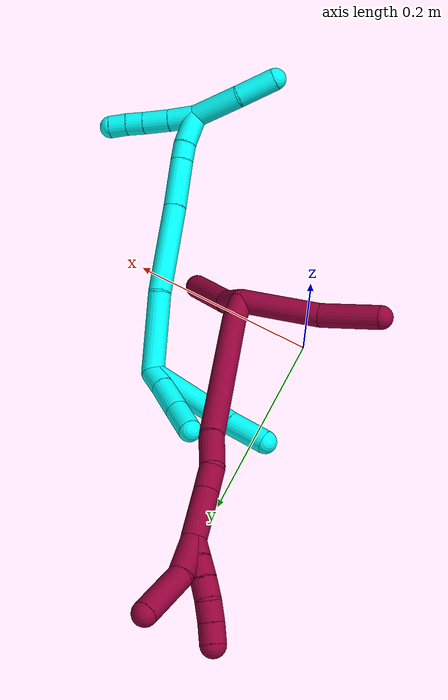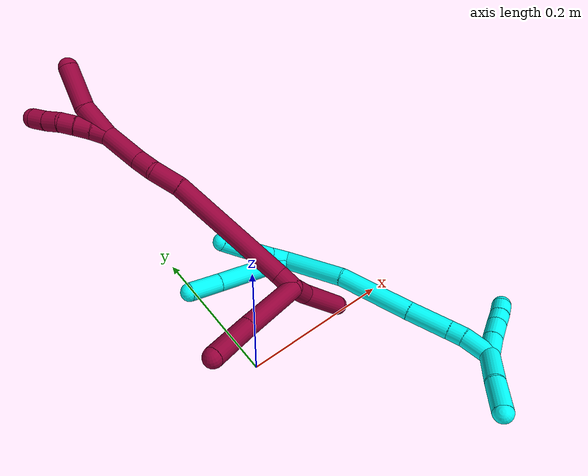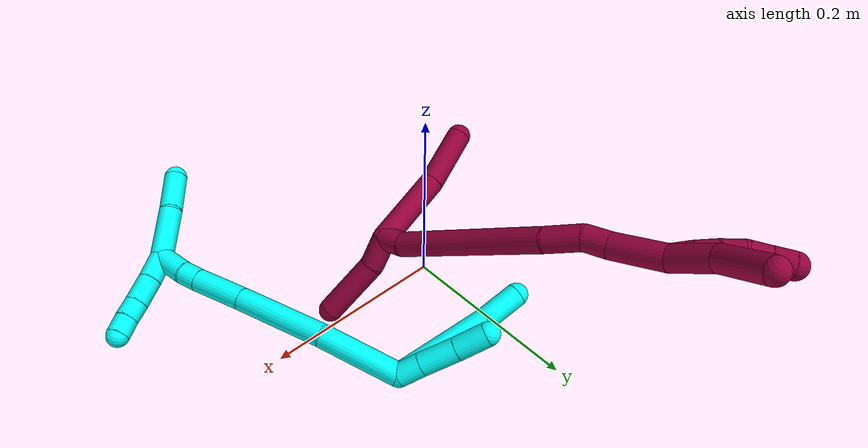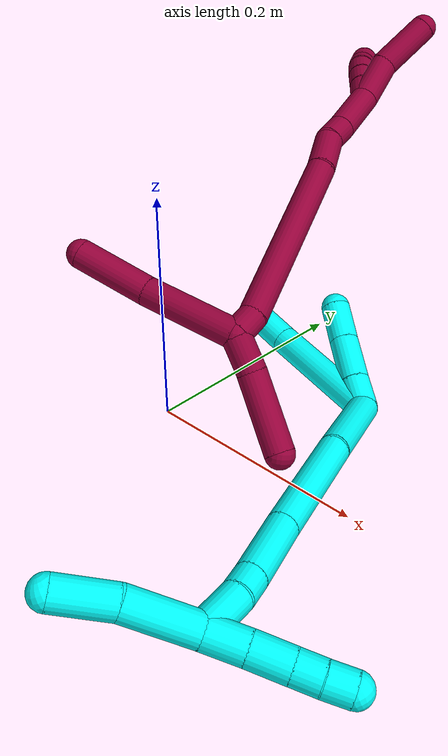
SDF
<sdf version="1.7">
 <world name="default">
  <model name="3">
   <static>0</static>
   <link name="3">
    <collision name="collision-cylinder-e_1_2_8">
     <pose>-0.042632 -0.005134 0.03058 0.166331 -0.94196 -0.08484</pose>
     <geometry><cylinder><radius>0.0125</radius><length>0.105431</length></cylinder></geometry>
     <surface>
      <friction><ode><mu>1.16</mu><mu2>1.16</mu2><slip1>0</slip1><slip2>0</slip2></ode></friction>
      <contact><ode><kp>1e+06</kp><kd>1</kd><max_vel>0</max_vel><min_depth>0.001</min_depth></ode></contact>
     </surface>
    </collision>
    <visual name="visual-cylinder-e_1_2_8">
     <pose>-0.042632 -0.005134 0.03058 0.166331 -0.94196 -0.08484</pose>
     <geometry><cylinder><radius>0.0125</radius><length>0.105431</length></cylinder></geometry>
     <material><ambient>0.003922 1 0.996078 1</ambient></material>
    </visual>
    <collision name="collision-cylinder-e_2_8_6">
     <pose>-0.10186 -0.013024 0.075773 0.186445 -0.840143 -0.083471</pose>
     <geometry><cylinder><radius>0.0125</radius><length>0.044569</length></cylinder></geometry>
     <surface>
      <friction><ode><mu>1.16</mu><mu2>1.16</mu2><slip1>0</slip1><slip2>0</slip2></ode></friction>
      <contact><ode><kp>1e+06</kp><kd>1</kd><max_vel>0</max_vel><min_depth>0.001</min_depth></ode></contact>
     </surface>
    </collision>
    <visual name="visual-cylinder-e_2_8_6">
     <pose>-0.10186 -0.013024 0.075773 0.186445 -0.840143 -0.083471</pose>
     <geometry><cylinder><radius>0.0125</radius><length>0.044569</length></cylinder></geometry>
     <material><ambient>0.003922 1 0.996078 1</ambient></material>
    </visual>
    <collision name="collision-cylinder-e_1_2_9">
     <pose>-0.007828 0.004427 0.009527 -0.43498 -0.640388 0.146298</pose>
     <geometry><cylinder><radius>0.0125</radius><length>0.026202</length></cylinder></geometry>
     <surface>
      <friction><ode><mu>1.16</mu><mu2>1.16</mu2><slip1>0</slip1><slip2>0</slip2></ode></friction>
      <contact><ode><kp>1e+06</kp><kd>1</kd><max_vel>0</max_vel><min_depth>0.001</min_depth></ode></contact>
     </surface>
    </collision>
    <visual name="visual-cylinder-e_1_2_9">
     <pose>-0.007828 0.004427 0.009527 -0.43498 -0.640388 0.146298</pose>
     <geometry><cylinder><radius>0.0125</radius><length>0.026202</length></cylinder></geometry>
     <material><ambient>0.003922 1 0.996078 1</ambient></material>
    </visual>
    <collision name="collision-cylinder-e_2_9_10">
     <pose>-0.027481 0.01618 0.033003 -0.483632 -0.643837 0.164151</pose>
     <geometry><cylinder><radius>0.0125</radius><length>0.039401</length></cylinder></geometry>
     <surface>
      <friction><ode><mu>1.16</mu><mu2>1.16</mu2><slip1>0</slip1><slip2>0</slip2></ode></friction>
      <contact><ode><kp>1e+06</kp><kd>1</kd><max_vel>0</max_vel><min_depth>0.001</min_depth></ode></contact>
     </surface>
    </collision>
    <visual name="visual-cylinder-e_2_9_10">
     <pose>-0.027481 0.01618 0.033003 -0.483632 -0.643837 0.164151</pose>
     <geometry><cylinder><radius>0.0125</radius><length>0.039401</length></cylinder></geometry>
     <material><ambient>0.003922 1 0.996078 1</ambient></material>
    </visual>
    <collision name="collision-cylinder-e_3_10_5">
     <pose>-0.048889 0.029936 0.059706 -0.466911 -0.590962 0.144511</pose>
     <geometry><cylinder><radius>0.0125</radius><length>0.034397</length></cylinder></geometry>
     <surface>
      <friction><ode><mu>1.16</mu><mu2>1.16</mu2><slip1>0</slip1><slip2>0</slip2></ode></friction>
      <contact><ode><kp>1e+06</kp><kd>1</kd><max_vel>0</max_vel><min_depth>0.001</min_depth></ode></contact>
     </surface>
    </collision>
    <visual name="visual-cylinder-e_3_10_5">
     <pose>-0.048889 0.029936 0.059706 -0.466911 -0.590962 0.144511</pose>
     <geometry><cylinder><radius>0.0125</radius><length>0.034397</length></cylinder></geometry>
     <material><ambient>0.003922 1 0.996078 1</ambient></material>
    </visual>
    <collision name="collision-cylinder-e_1_2_11">
     <pose>0.031209 -0.030587 0.002971 1.47395 0.793122 0.726358</pose>
     <geometry><cylinder><radius>0.0125</radius><length>0.087599</length></cylinder></geometry>
     <surface>
      <friction><ode><mu>1.16</mu><mu2>1.16</mu2><slip1>0</slip1><slip2>0</slip2></ode></friction>
      <contact><ode><kp>1e+06</kp><kd>1</kd><max_vel>0</max_vel><min_depth>0.001</min_depth></ode></contact>
     </surface>
    </collision>
    <visual name="visual-cylinder-e_1_2_11">
     <pose>0.031209 -0.030587 0.002971 1.47395 0.793122 0.726358</pose>
     <geometry><cylinder><radius>0.0125</radius><length>0.087599</length></cylinder></geometry>
     <material><ambient>0.003922 1 0.996078 1</ambient></material>
    </visual>
    <collision name="collision-cylinder-e_2_11_12">
     <pose>0.092569 -0.100926 0.002838 1.64874 0.647427 0.695963</pose>
     <geometry><cylinder><radius>0.0125</radius><length>0.09998</length></cylinder></geometry>
     <surface>
      <friction><ode><mu>1.16</mu><mu2>1.16</mu2><slip1>0</slip1><slip2>0</slip2></ode></friction>
      <contact><ode><kp>1e+06</kp><kd>1</kd><max_vel>0</max_vel><min_depth>0.001</min_depth></ode></contact>
     </surface>
    </collision>
    <visual name="visual-cylinder-e_2_11_12">
     <pose>0.092569 -0.100926 0.002838 1.64874 0.647427 0.695963</pose>
     <geometry><cylinder><radius>0.0125</radius><length>0.09998</length></cylinder></geometry>
     <material><ambient>0.003922 1 0.996078 1</ambient></material>
    </visual>
    <collision name="collision-cylinder-e_3_12_13">
     <pose>0.139983 -0.162294 -0.002131 1.65681 0.672119 0.72756</pose>
     <geometry><cylinder><radius>0.0125</radius><length>0.05545</length></cylinder></geometry>
     <surface>
      <friction><ode><mu>1.16</mu><mu2>1.16</mu2><slip1>0</slip1><slip2>0</slip2></ode></friction>
      <contact><ode><kp>1e+06</kp><kd>1</kd><max_vel>0</max_vel><min_depth>0.001</min_depth></ode></contact>
     </surface>
    </collision>
    <visual name="visual-cylinder-e_3_12_13">
     <pose>0.139983 -0.162294 -0.002131 1.65681 0.672119 0.72756</pose>
     <geometry><cylinder><radius>0.0125</radius><length>0.05545</length></cylinder></geometry>
     <material><ambient>0.003922 1 0.996078 1</ambient></material>
    </visual>
    <collision name="collision-cylinder-e_4_13_14">
     <pose>0.16353 -0.191933 -0.004206 1.59713 0.664252 0.680655</pose>
     <geometry><cylinder><radius>0.0125</radius><length>0.020389</length></cylinder></geometry>
     <surface>
      <friction><ode><mu>1.16</mu><mu2>1.16</mu2><slip1>0</slip1><slip2>0</slip2></ode></friction>
      <contact><ode><kp>1e+06</kp><kd>1</kd><max_vel>0</max_vel><min_depth>0.001</min_depth></ode></contact>
     </surface>
    </collision>
    <visual name="visual-cylinder-e_4_13_14">
     <pose>0.16353 -0.191933 -0.004206 1.59713 0.664252 0.680655</pose>
     <geometry><cylinder><radius>0.0125</radius><length>0.020389</length></cylinder></geometry>
     <material><ambient>0.003922 1 0.996078 1</ambient></material>
    </visual>
    <collision name="collision-cylinder-e_5_14_1">
     <pose>0.178394 -0.216108 -0.004127 1.55282 0.48822 0.479856</pose>
     <geometry><cylinder><radius>0.0125</radius><length>0.036582</length></cylinder></geometry>
     <surface>
      <friction><ode><mu>1.16</mu><mu2>1.16</mu2><slip1>0</slip1><slip2>0</slip2></ode></friction>
      <contact><ode><kp>1e+06</kp><kd>1</kd><max_vel>0</max_vel><min_depth>0.001</min_depth></ode></contact>
     </surface>
    </collision>
    <visual name="visual-cylinder-e_5_14_1">
     <pose>0.178394 -0.216108 -0.004127 1.55282 0.48822 0.479856</pose>
     <geometry><cylinder><radius>0.0125</radius><length>0.036582</length></cylinder></geometry>
     <material><ambient>0.003922 1 0.996078 1</ambient></material>
    </visual>
    <collision name="collision-cylinder-e_1_1_15">
     <pose>0.193631 -0.222771 -0.01361 -2.37094 0.454547 -1.03643</pose>
     <geometry><cylinder><radius>0.0125</radius><length>0.030324</length></cylinder></geometry>
     <surface>
      <friction><ode><mu>1.16</mu><mu2>1.16</mu2><slip1>0</slip1><slip2>0</slip2></ode></friction>
      <contact><ode><kp>1e+06</kp><kd>1</kd><max_vel>0</max_vel><min_depth>0.001</min_depth></ode></contact>
     </surface>
    </collision>
    <visual name="visual-cylinder-e_1_1_15">
     <pose>0.193631 -0.222771 -0.01361 -2.37094 0.454547 -1.03643</pose>
     <geometry><cylinder><radius>0.0125</radius><length>0.030324</length></cylinder></geometry>
     <material><ambient>0.003922 1 0.996078 1</ambient></material>
    </visual>
    <collision name="collision-cylinder-e_2_15_16">
     <pose>0.207301 -0.204415 -0.032896 -2.39135 0.494587 -1.14024</pose>
     <geometry><cylinder><radius>0.0125</radius><length>0.029549</length></cylinder></geometry>
     <surface>
      <friction><ode><mu>1.16</mu><mu2>1.16</mu2><slip1>0</slip1><slip2>0</slip2></ode></friction>
      <contact><ode><kp>1e+06</kp><kd>1</kd><max_vel>0</max_vel><min_depth>0.001</min_depth></ode></contact>
     </surface>
    </collision>
    <visual name="visual-cylinder-e_2_15_16">
     <pose>0.207301 -0.204415 -0.032896 -2.39135 0.494587 -1.14024</pose>
     <geometry><cylinder><radius>0.0125</radius><length>0.029549</length></cylinder></geometry>
     <material><ambient>0.003922 1 0.996078 1</ambient></material>
    </visual>
    <collision name="collision-cylinder-e_3_16_17">
     <pose>0.219387 -0.189599 -0.048661 -2.38099 0.531422 -1.19541</pose>
     <geometry><cylinder><radius>0.0125</radius><length>0.020024</length></cylinder></geometry>
     <surface>
      <friction><ode><mu>1.16</mu><mu2>1.16</mu2><slip1>0</slip1><slip2>0</slip2></ode></friction>
      <contact><ode><kp>1e+06</kp><kd>1</kd><max_vel>0</max_vel><min_depth>0.001</min_depth></ode></contact>
     </surface>
    </collision>
    <visual name="visual-cylinder-e_3_16_17">
     <pose>0.219387 -0.189599 -0.048661 -2.38099 0.531422 -1.19541</pose>
     <geometry><cylinder><radius>0.0125</radius><length>0.020024</length></cylinder></geometry>
     <material><ambient>0.003922 1 0.996078 1</ambient></material>
    </visual>
    <collision name="collision-cylinder-e_4_17_4">
     <pose>0.22891 -0.177231 -0.061243 -2.34927 0.458568 -1.01789</pose>
     <geometry><cylinder><radius>0.0125</radius><length>0.020103</length></cylinder></geometry>
     <surface>
      <friction><ode><mu>1.16</mu><mu2>1.16</mu2><slip1>0</slip1><slip2>0</slip2></ode></friction>
      <contact><ode><kp>1e+06</kp><kd>1</kd><max_vel>0</max_vel><min_depth>0.001</min_depth></ode></contact>
     </surface>
    </collision>
    <visual name="visual-cylinder-e_4_17_4">
     <pose>0.22891 -0.177231 -0.061243 -2.34927 0.458568 -1.01789</pose>
     <geometry><cylinder><radius>0.0125</radius><length>0.020103</length></cylinder></geometry>
     <material><ambient>0.003922 1 0.996078 1</ambient></material>
    </visual>
    <collision name="collision-cylinder-e_1_1_18">
     <pose>0.18191 -0.250699 0.016281 0.741907 -0.18348 -0.071537</pose>
     <geometry><cylinder><radius>0.0125</radius><length>0.05551</length></cylinder></geometry>
     <surface>
      <friction><ode><mu>1.16</mu><mu2>1.16</mu2><slip1>0</slip1><slip2>0</slip2></ode></friction>
      <contact><ode><kp>1e+06</kp><kd>1</kd><max_vel>0</max_vel><min_depth>0.001</min_depth></ode></contact>
     </surface>
    </collision>
    <visual name="visual-cylinder-e_1_1_18">
     <pose>0.18191 -0.250699 0.016281 0.741907 -0.18348 -0.071537</pose>
     <geometry><cylinder><radius>0.0125</radius><length>0.05551</length></cylinder></geometry>
     <material><ambient>0.003922 1 0.996078 1</ambient></material>
    </visual>
    <collision name="collision-cylinder-e_2_18_3">
     <pose>0.172679 -0.286696 0.049405 0.93319 -0.188419 -0.095115</pose>
     <geometry><cylinder><radius>0.0125</radius><length>0.04449</length></cylinder></geometry>
     <surface>
      <friction><ode><mu>1.16</mu><mu2>1.16</mu2><slip1>0</slip1><slip2>0</slip2></ode></friction>
      <contact><ode><kp>1e+06</kp><kd>1</kd><max_vel>0</max_vel><min_depth>0.001</min_depth></ode></contact>
     </surface>
    </collision>
    <visual name="visual-cylinder-e_2_18_3">
     <pose>0.172679 -0.286696 0.049405 0.93319 -0.188419 -0.095115</pose>
     <geometry><cylinder><radius>0.0125</radius><length>0.04449</length></cylinder></geometry>
     <material><ambient>0.003922 1 0.996078 1</ambient></material>
    </visual>
    <collision name="collision-sphere-3">
     <pose>0.168513 -0.304254 0.062413 0 -0 0</pose>
     <geometry><sphere><radius>0.0125</radius></sphere></geometry>
     <surface>
      <friction><ode><mu>1.16</mu><mu2>1.16</mu2><slip1>0</slip1><slip2>0</slip2></ode></friction>
      <contact><ode><kp>1e+06</kp><kd>1</kd><max_vel>0</max_vel><min_depth>0.001</min_depth></ode></contact>
     </surface>
    </collision>
    <visual name="visual-sphere-3">
     <pose>0.168513 -0.304254 0.062413 0 -0 0</pose>
     <geometry><sphere><radius>0.0125</radius></sphere></geometry>
     <material><ambient>0.003922 1 0.996078 1</ambient></material>
    </visual>
    <collision name="collision-sphere-5">
     <pose>-0.058472 0.036364 0.072459 0 -0 0</pose>
     <geometry><sphere><radius>0.0125</radius></sphere></geometry>
     <surface>
      <friction><ode><mu>1.16</mu><mu2>1.16</mu2><slip1>0</slip1><slip2>0</slip2></ode></friction>
      <contact><ode><kp>1e+06</kp><kd>1</kd><max_vel>0</max_vel><min_depth>0.001</min_depth></ode></contact>
     </surface>
    </collision>
    <visual name="visual-sphere-5">
     <pose>-0.058472 0.036364 0.072459 0 -0 0</pose>
     <geometry><sphere><radius>0.0125</radius></sphere></geometry>
     <material><ambient>0.003922 1 0.996078 1</ambient></material>
    </visual>
    <collision name="collision-sphere-10">
     <pose>-0.039307 0.023507 0.046953 0 -0 0</pose>
     <geometry><sphere><radius>0.0125</radius></sphere></geometry>
     <surface>
      <friction><ode><mu>1.16</mu><mu2>1.16</mu2><slip1>0</slip1><slip2>0</slip2></ode></friction>
      <contact><ode><kp>1e+06</kp><kd>1</kd><max_vel>0</max_vel><min_depth>0.001</min_depth></ode></contact>
     </surface>
    </collision>
    <visual name="visual-sphere-10">
     <pose>-0.039307 0.023507 0.046953 0 -0 0</pose>
     <geometry><sphere><radius>0.0125</radius></sphere></geometry>
     <material><ambient>0.003922 1 0.996078 1</ambient></material>
    </visual>
    <collision name="collision-sphere-6">
     <pose>-0.118456 -0.015781 0.090387 0 -0 0</pose>
     <geometry><sphere><radius>0.0125</radius></sphere></geometry>
     <surface>
      <friction><ode><mu>1.16</mu><mu2>1.16</mu2><slip1>0</slip1><slip2>0</slip2></ode></friction>
      <contact><ode><kp>1e+06</kp><kd>1</kd><max_vel>0</max_vel><min_depth>0.001</min_depth></ode></contact>
     </surface>
    </collision>
    <visual name="visual-sphere-6">
     <pose>-0.118456 -0.015781 0.090387 0 -0 0</pose>
     <geometry><sphere><radius>0.0125</radius></sphere></geometry>
     <material><ambient>0.003922 1 0.996078 1</ambient></material>
    </visual>
    <collision name="collision-sphere-9">
     <pose>-0.015656 0.008854 0.019054 0 -0 0</pose>
     <geometry><sphere><radius>0.0125</radius></sphere></geometry>
     <surface>
      <friction><ode><mu>1.16</mu><mu2>1.16</mu2><slip1>0</slip1><slip2>0</slip2></ode></friction>
      <contact><ode><kp>1e+06</kp><kd>1</kd><max_vel>0</max_vel><min_depth>0.001</min_depth></ode></contact>
     </surface>
    </collision>
    <visual name="visual-sphere-9">
     <pose>-0.015656 0.008854 0.019054 0 -0 0</pose>
     <geometry><sphere><radius>0.0125</radius></sphere></geometry>
     <material><ambient>0.003922 1 0.996078 1</ambient></material>
    </visual>
    <collision name="collision-sphere-2">
     <geometry><sphere><radius>0.0125</radius></sphere></geometry>
     <surface>
      <friction><ode><mu>1.16</mu><mu2>1.16</mu2><slip1>0</slip1><slip2>0</slip2></ode></friction>
      <contact><ode><kp>1e+06</kp><kd>1</kd><max_vel>0</max_vel><min_depth>0.001</min_depth></ode></contact>
     </surface>
    </collision>
    <visual name="visual-sphere-2">
     <geometry><sphere><radius>0.0125</radius></sphere></geometry>
     <material><ambient>0.003922 1 0.996078 1</ambient></material>
    </visual>
    <collision name="collision-sphere-8">
     <pose>-0.085264 -0.010268 0.061159 0 -0 0</pose>
     <geometry><sphere><radius>0.0125</radius></sphere></geometry>
     <surface>
      <friction><ode><mu>1.16</mu><mu2>1.16</mu2><slip1>0</slip1><slip2>0</slip2></ode></friction>
      <contact><ode><kp>1e+06</kp><kd>1</kd><max_vel>0</max_vel><min_depth>0.001</min_depth></ode></contact>
     </surface>
    </collision>
    <visual name="visual-sphere-8">
     <pose>-0.085264 -0.010268 0.061159 0 -0 0</pose>
     <geometry><sphere><radius>0.0125</radius></sphere></geometry>
     <material><ambient>0.003922 1 0.996078 1</ambient></material>
    </visual>
    <collision name="collision-sphere-11">
     <pose>0.062418 -0.061173 0.005943 0 -0 0</pose>
     <geometry><sphere><radius>0.0125</radius></sphere></geometry>
     <surface>
      <friction><ode><mu>1.16</mu><mu2>1.16</mu2><slip1>0</slip1><slip2>0</slip2></ode></friction>
      <contact><ode><kp>1e+06</kp><kd>1</kd><max_vel>0</max_vel><min_depth>0.001</min_depth></ode></contact>
     </surface>
    </collision>
    <visual name="visual-sphere-11">
     <pose>0.062418 -0.061173 0.005943 0 -0 0</pose>
     <geometry><sphere><radius>0.0125</radius></sphere></geometry>
     <material><ambient>0.003922 1 0.996078 1</ambient></material>
    </visual>
    <collision name="collision-sphere-12">
     <pose>0.12272 -0.140679 -0.000267 0 -0 0</pose>
     <geometry><sphere><radius>0.0125</radius></sphere></geometry>
     <surface>
      <friction><ode><mu>1.16</mu><mu2>1.16</mu2><slip1>0</slip1><slip2>0</slip2></ode></friction>
      <contact><ode><kp>1e+06</kp><kd>1</kd><max_vel>0</max_vel><min_depth>0.001</min_depth></ode></contact>
     </surface>
    </collision>
    <visual name="visual-sphere-12">
     <pose>0.12272 -0.140679 -0.000267 0 -0 0</pose>
     <geometry><sphere><radius>0.0125</radius></sphere></geometry>
     <material><ambient>0.003922 1 0.996078 1</ambient></material>
    </visual>
    <collision name="collision-sphere-13">
     <pose>0.157246 -0.183909 -0.003994 0 -0 0</pose>
     <geometry><sphere><radius>0.0125</radius></sphere></geometry>
     <surface>
      <friction><ode><mu>1.16</mu><mu2>1.16</mu2><slip1>0</slip1><slip2>0</slip2></ode></friction>
      <contact><ode><kp>1e+06</kp><kd>1</kd><max_vel>0</max_vel><min_depth>0.001</min_depth></ode></contact>
     </surface>
    </collision>
    <visual name="visual-sphere-13">
     <pose>0.157246 -0.183909 -0.003994 0 -0 0</pose>
     <geometry><sphere><radius>0.0125</radius></sphere></geometry>
     <material><ambient>0.003922 1 0.996078 1</ambient></material>
    </visual>
    <collision name="collision-sphere-14">
     <pose>0.169815 -0.199957 -0.004417 0 -0 0</pose>
     <geometry><sphere><radius>0.0125</radius></sphere></geometry>
     <surface>
      <friction><ode><mu>1.16</mu><mu2>1.16</mu2><slip1>0</slip1><slip2>0</slip2></ode></friction>
      <contact><ode><kp>1e+06</kp><kd>1</kd><max_vel>0</max_vel><min_depth>0.001</min_depth></ode></contact>
     </surface>
    </collision>
    <visual name="visual-sphere-14">
     <pose>0.169815 -0.199957 -0.004417 0 -0 0</pose>
     <geometry><sphere><radius>0.0125</radius></sphere></geometry>
     <material><ambient>0.003922 1 0.996078 1</ambient></material>
    </visual>
    <collision name="collision-sphere-1">
     <pose>0.186974 -0.23226 -0.003836 0 -0 0</pose>
     <geometry><sphere><radius>0.0125</radius></sphere></geometry>
     <surface>
      <friction><ode><mu>1.16</mu><mu2>1.16</mu2><slip1>0</slip1><slip2>0</slip2></ode></friction>
      <contact><ode><kp>1e+06</kp><kd>1</kd><max_vel>0</max_vel><min_depth>0.001</min_depth></ode></contact>
     </surface>
    </collision>
    <visual name="visual-sphere-1">
     <pose>0.186974 -0.23226 -0.003836 0 -0 0</pose>
     <geometry><sphere><radius>0.0125</radius></sphere></geometry>
     <material><ambient>0.003922 1 0.996078 1</ambient></material>
    </visual>
    <collision name="collision-sphere-18">
     <pose>0.176846 -0.269138 0.036398 0 -0 0</pose>
     <geometry><sphere><radius>0.0125</radius></sphere></geometry>
     <surface>
      <friction><ode><mu>1.16</mu><mu2>1.16</mu2><slip1>0</slip1><slip2>0</slip2></ode></friction>
      <contact><ode><kp>1e+06</kp><kd>1</kd><max_vel>0</max_vel><min_depth>0.001</min_depth></ode></contact>
     </surface>
    </collision>
    <visual name="visual-sphere-18">
     <pose>0.176846 -0.269138 0.036398 0 -0 0</pose>
     <geometry><sphere><radius>0.0125</radius></sphere></geometry>
     <material><ambient>0.003922 1 0.996078 1</ambient></material>
    </visual>
    <collision name="collision-sphere-15">
     <pose>0.200287 -0.213281 -0.023383 0 -0 0</pose>
     <geometry><sphere><radius>0.0125</radius></sphere></geometry>
     <surface>
      <friction><ode><mu>1.16</mu><mu2>1.16</mu2><slip1>0</slip1><slip2>0</slip2></ode></friction>
      <contact><ode><kp>1e+06</kp><kd>1</kd><max_vel>0</max_vel><min_depth>0.001</min_depth></ode></contact>
     </surface>
    </collision>
    <visual name="visual-sphere-15">
     <pose>0.200287 -0.213281 -0.023383 0 -0 0</pose>
     <geometry><sphere><radius>0.0125</radius></sphere></geometry>
     <material><ambient>0.003922 1 0.996078 1</ambient></material>
    </visual>
    <collision name="collision-sphere-16">
     <pose>0.214314 -0.195549 -0.042409 0 -0 0</pose>
     <geometry><sphere><radius>0.0125</radius></sphere></geometry>
     <surface>
      <friction><ode><mu>1.16</mu><mu2>1.16</mu2><slip1>0</slip1><slip2>0</slip2></ode></friction>
      <contact><ode><kp>1e+06</kp><kd>1</kd><max_vel>0</max_vel><min_depth>0.001</min_depth></ode></contact>
     </surface>
    </collision>
    <visual name="visual-sphere-16">
     <pose>0.214314 -0.195549 -0.042409 0 -0 0</pose>
     <geometry><sphere><radius>0.0125</radius></sphere></geometry>
     <material><ambient>0.003922 1 0.996078 1</ambient></material>
    </visual>
    <collision name="collision-sphere-17">
     <pose>0.224461 -0.183649 -0.054914 0 -0 0</pose>
     <geometry><sphere><radius>0.0125</radius></sphere></geometry>
     <surface>
      <friction><ode><mu>1.16</mu><mu2>1.16</mu2><slip1>0</slip1><slip2>0</slip2></ode></friction>
      <contact><ode><kp>1e+06</kp><kd>1</kd><max_vel>0</max_vel><min_depth>0.001</min_depth></ode></contact>
     </surface>
    </collision>
    <visual name="visual-sphere-17">
     <pose>0.224461 -0.183649 -0.054914 0 -0 0</pose>
     <geometry><sphere><radius>0.0125</radius></sphere></geometry>
     <material><ambient>0.003922 1 0.996078 1</ambient></material>
    </visual>
    <collision name="collision-sphere-4">
     <pose>0.23336 -0.170814 -0.067572 0 -0 0</pose>
     <geometry><sphere><radius>0.0125</radius></sphere></geometry>
     <surface>
      <friction><ode><mu>1.16</mu><mu2>1.16</mu2><slip1>0</slip1><slip2>0</slip2></ode></friction>
      <contact><ode><kp>1e+06</kp><kd>1</kd><max_vel>0</max_vel><min_depth>0.001</min_depth></ode></contact>
     </surface>
    </collision>
    <visual name="visual-sphere-4">
     <pose>0.23336 -0.170814 -0.067572 0 -0 0</pose>
     <geometry><sphere><radius>0.0125</radius></sphere></geometry>
     <material><ambient>0.003922 1 0.996078 1</ambient></material>
    </visual>
    <inertial>
     <pose>0.075173 -0.106337 0.013207 0 -0 0</pose>
     <mass>0.75</mass>
     <inertia>
      <ixx>0.000278</ixx>
      <ixy>0</ixy>
      <ixz>0</ixz>
      <iyy>0.000261</iyy>
      <iyz>0</iyz>
      <izz>0.000149</izz>
     </inertia>
    </inertial>
   </link>
   <pose>0.129617 0.104723 0.01235 0.237468 -0.424467 -0.3791</pose>
  </model>
  <model name="8">
   <static>0</static>
   <link name="8">
    <collision name="collision-cylinder-e_1_2_8">
     <pose>-0.041782 -0.002834 0.007766 0.349846 -1.37546 -0.288361</pose>
     <geometry><cylinder><radius>0.0125</radius><length>0.085184</length></cylinder></geometry>
     <surface>
      <friction><ode><mu>1.16</mu><mu2>1.16</mu2><slip1>0</slip1><slip2>0</slip2></ode></friction>
      <contact><ode><kp>1e+06</kp><kd>1</kd><max_vel>0</max_vel><min_depth>0.001</min_depth></ode></contact>
     </surface>
    </collision>
    <visual name="visual-cylinder-e_1_2_8">
     <pose>-0.041782 -0.002834 0.007766 0.349846 -1.37546 -0.288361</pose>
     <geometry><cylinder><radius>0.0125</radius><length>0.085184</length></cylinder></geometry>
     <material><ambient>0.584314 0 0.227451 1</ambient></material>
    </visual>
    <collision name="collision-cylinder-e_2_8_6">
     <pose>-0.113901 -0.012071 0.024962 0.596619 -1.21139 -0.419616</pose>
     <geometry><cylinder><radius>0.0125</radius><length>0.064816</length></cylinder></geometry>
     <surface>
      <friction><ode><mu>1.16</mu><mu2>1.16</mu2><slip1>0</slip1><slip2>0</slip2></ode></friction>
      <contact><ode><kp>1e+06</kp><kd>1</kd><max_vel>0</max_vel><min_depth>0.001</min_depth></ode></contact>
     </surface>
    </collision>
    <visual name="visual-cylinder-e_2_8_6">
     <pose>-0.113901 -0.012071 0.024962 0.596619 -1.21139 -0.419616</pose>
     <geometry><cylinder><radius>0.0125</radius><length>0.064816</length></cylinder></geometry>
     <material><ambient>0.584314 0 0.227451 1</ambient></material>
    </visual>
    <collision name="collision-cylinder-e_1_2_9">
     <pose>0.00837 0.002163 -0.013728 -2.98533 0.542105 -2.59235</pose>
     <geometry><cylinder><radius>0.0125</radius><length>0.032447</length></cylinder></geometry>
     <surface>
      <friction><ode><mu>1.16</mu><mu2>1.16</mu2><slip1>0</slip1><slip2>0</slip2></ode></friction>
      <contact><ode><kp>1e+06</kp><kd>1</kd><max_vel>0</max_vel><min_depth>0.001</min_depth></ode></contact>
     </surface>
    </collision>
    <visual name="visual-cylinder-e_1_2_9">
     <pose>0.00837 0.002163 -0.013728 -2.98533 0.542105 -2.59235</pose>
     <geometry><cylinder><radius>0.0125</radius><length>0.032447</length></cylinder></geometry>
     <material><ambient>0.584314 0 0.227451 1</ambient></material>
    </visual>
    <collision name="collision-cylinder-e_2_9_5">
     <pose>0.036732 -0.000658 -0.054221 2.95748 0.633375 2.59243</pose>
     <geometry><cylinder><radius>0.0125</radius><length>0.067553</length></cylinder></geometry>
     <surface>
      <friction><ode><mu>1.16</mu><mu2>1.16</mu2><slip1>0</slip1><slip2>0</slip2></ode></friction>
      <contact><ode><kp>1e+06</kp><kd>1</kd><max_vel>0</max_vel><min_depth>0.001</min_depth></ode></contact>
     </surface>
    </collision>
    <visual name="visual-cylinder-e_2_9_5">
     <pose>0.036732 -0.000658 -0.054221 2.95748 0.633375 2.59243</pose>
     <geometry><cylinder><radius>0.0125</radius><length>0.067553</length></cylinder></geometry>
     <material><ambient>0.584314 0 0.227451 1</ambient></material>
    </visual>
    <collision name="collision-cylinder-e_1_2_10">
     <pose>0.00065 0.010587 0.005919 -1.06103 0.053548 -0.031416</pose>
     <geometry><cylinder><radius>0.0125</radius><length>0.024294</length></cylinder></geometry>
     <surface>
      <friction><ode><mu>1.16</mu><mu2>1.16</mu2><slip1>0</slip1><slip2>0</slip2></ode></friction>
      <contact><ode><kp>1e+06</kp><kd>1</kd><max_vel>0</max_vel><min_depth>0.001</min_depth></ode></contact>
     </surface>
    </collision>
    <visual name="visual-cylinder-e_1_2_10">
     <pose>0.00065 0.010587 0.005919 -1.06103 0.053548 -0.031416</pose>
     <geometry><cylinder><radius>0.0125</radius><length>0.024294</length></cylinder></geometry>
     <material><ambient>0.584314 0 0.227451 1</ambient></material>
    </visual>
    <collision name="collision-cylinder-e_2_10_11">
     <pose>-0.006916 0.079371 0.067386 -0.808674 -0.101773 0.043581</pose>
     <geometry><cylinder><radius>0.0125</radius><length>0.16174</length></cylinder></geometry>
     <surface>
      <friction><ode><mu>1.16</mu><mu2>1.16</mu2><slip1>0</slip1><slip2>0</slip2></ode></friction>
      <contact><ode><kp>1e+06</kp><kd>1</kd><max_vel>0</max_vel><min_depth>0.001</min_depth></ode></contact>
     </surface>
    </collision>
    <visual name="visual-cylinder-e_2_10_11">
     <pose>-0.006916 0.079371 0.067386 -0.808674 -0.101773 0.043581</pose>
     <geometry><cylinder><radius>0.0125</radius><length>0.16174</length></cylinder></geometry>
     <material><ambient>0.584314 0 0.227451 1</ambient></material>
    </visual>
    <collision name="collision-cylinder-e_3_11_12">
     <pose>-0.020027 0.151315 0.134167 -0.885752 -0.269043 0.128206</pose>
     <geometry><cylinder><radius>0.0125</radius><length>0.03683</length></cylinder></geometry>
     <surface>
      <friction><ode><mu>1.16</mu><mu2>1.16</mu2><slip1>0</slip1><slip2>0</slip2></ode></friction>
      <contact><ode><kp>1e+06</kp><kd>1</kd><max_vel>0</max_vel><min_depth>0.001</min_depth></ode></contact>
     </surface>
    </collision>
    <visual name="visual-cylinder-e_3_11_12">
     <pose>-0.020027 0.151315 0.134167 -0.885752 -0.269043 0.128206</pose>
     <geometry><cylinder><radius>0.0125</radius><length>0.03683</length></cylinder></geometry>
     <material><ambient>0.584314 0 0.227451 1</ambient></material>
    </visual>
    <collision name="collision-cylinder-e_4_12_13">
     <pose>-0.025402 0.176364 0.150443 -1.15103 -0.038749 0.025141</pose>
     <geometry><cylinder><radius>0.0125</radius><length>0.02477</length></cylinder></geometry>
     <surface>
      <friction><ode><mu>1.16</mu><mu2>1.16</mu2><slip1>0</slip1><slip2>0</slip2></ode></friction>
      <contact><ode><kp>1e+06</kp><kd>1</kd><max_vel>0</max_vel><min_depth>0.001</min_depth></ode></contact>
     </surface>
    </collision>
    <visual name="visual-cylinder-e_4_12_13">
     <pose>-0.025402 0.176364 0.150443 -1.15103 -0.038749 0.025141</pose>
     <geometry><cylinder><radius>0.0125</radius><length>0.02477</length></cylinder></geometry>
     <material><ambient>0.584314 0 0.227451 1</ambient></material>
    </visual>
    <collision name="collision-cylinder-e_5_13_1">
     <pose>-0.026785 0.210138 0.168892 -1.03295 -0.034502 0.019595</pose>
     <geometry><cylinder><radius>0.0125</radius><length>0.052366</length></cylinder></geometry>
     <surface>
      <friction><ode><mu>1.16</mu><mu2>1.16</mu2><slip1>0</slip1><slip2>0</slip2></ode></friction>
      <contact><ode><kp>1e+06</kp><kd>1</kd><max_vel>0</max_vel><min_depth>0.001</min_depth></ode></contact>
     </surface>
    </collision>
    <visual name="visual-cylinder-e_5_13_1">
     <pose>-0.026785 0.210138 0.168892 -1.03295 -0.034502 0.019595</pose>
     <geometry><cylinder><radius>0.0125</radius><length>0.052366</length></cylinder></geometry>
     <material><ambient>0.584314 0 0.227451 1</ambient></material>
    </visual>
    <collision name="collision-cylinder-e_1_1_14">
     <pose>-0.032509 0.239685 0.187465 -0.93987 -0.50313 0.259594</pose>
     <geometry><cylinder><radius>0.0125</radius><length>0.02</length></cylinder></geometry>
     <surface>
      <friction><ode><mu>1.16</mu><mu2>1.16</mu2><slip1>0</slip1><slip2>0</slip2></ode></friction>
      <contact><ode><kp>1e+06</kp><kd>1</kd><max_vel>0</max_vel><min_depth>0.001</min_depth></ode></contact>
     </surface>
    </collision>
    <visual name="visual-cylinder-e_1_1_14">
     <pose>-0.032509 0.239685 0.187465 -0.93987 -0.50313 0.259594</pose>
     <geometry><cylinder><radius>0.0125</radius><length>0.02</length></cylinder></geometry>
     <material><ambient>0.584314 0 0.227451 1</ambient></material>
    </visual>
    <collision name="collision-cylinder-e_2_14_15">
     <pose>-0.042268 0.254366 0.196847 -1.06481 -0.51637 0.308691</pose>
     <geometry><cylinder><radius>0.0125</radius><length>0.02</length></cylinder></geometry>
     <surface>
      <friction><ode><mu>1.16</mu><mu2>1.16</mu2><slip1>0</slip1><slip2>0</slip2></ode></friction>
      <contact><ode><kp>1e+06</kp><kd>1</kd><max_vel>0</max_vel><min_depth>0.001</min_depth></ode></contact>
     </surface>
    </collision>
    <visual name="visual-cylinder-e_2_14_15">
     <pose>-0.042268 0.254366 0.196847 -1.06481 -0.51637 0.308691</pose>
     <geometry><cylinder><radius>0.0125</radius><length>0.02</length></cylinder></geometry>
     <material><ambient>0.584314 0 0.227451 1</ambient></material>
    </visual>
    <collision name="collision-cylinder-e_3_15_16">
     <pose>-0.051851 0.270063 0.204661 -1.15223 -0.483132 0.317418</pose>
     <geometry><cylinder><radius>0.0125</radius><length>0.02</length></cylinder></geometry>
     <surface>
      <friction><ode><mu>1.16</mu><mu2>1.16</mu2><slip1>0</slip1><slip2>0</slip2></ode></friction>
      <contact><ode><kp>1e+06</kp><kd>1</kd><max_vel>0</max_vel><min_depth>0.001</min_depth></ode></contact>
     </surface>
    </collision>
    <visual name="visual-cylinder-e_3_15_16">
     <pose>-0.051851 0.270063 0.204661 -1.15223 -0.483132 0.317418</pose>
     <geometry><cylinder><radius>0.0125</radius><length>0.02</length></cylinder></geometry>
     <material><ambient>0.584314 0 0.227451 1</ambient></material>
    </visual>
    <collision name="collision-cylinder-e_4_16_17">
     <pose>-0.060499 0.287222 0.209586 -1.42569 -0.411713 0.357188</pose>
     <geometry><cylinder><radius>0.0125</radius><length>0.02</length></cylinder></geometry>
     <surface>
      <friction><ode><mu>1.16</mu><mu2>1.16</mu2><slip1>0</slip1><slip2>0</slip2></ode></friction>
      <contact><ode><kp>1e+06</kp><kd>1</kd><max_vel>0</max_vel><min_depth>0.001</min_depth></ode></contact>
     </surface>
    </collision>
    <visual name="visual-cylinder-e_4_16_17">
     <pose>-0.060499 0.287222 0.209586 -1.42569 -0.411713 0.357188</pose>
     <geometry><cylinder><radius>0.0125</radius><length>0.02</length></cylinder></geometry>
     <material><ambient>0.584314 0 0.227451 1</ambient></material>
    </visual>
    <collision name="collision-cylinder-e_5_17_4">
     <pose>-0.067953 0.305446 0.212975 -1.34907 -0.352506 0.282939</pose>
     <geometry><cylinder><radius>0.0125</radius><length>0.02</length></cylinder></geometry>
     <surface>
      <friction><ode><mu>1.16</mu><mu2>1.16</mu2><slip1>0</slip1><slip2>0</slip2></ode></friction>
      <contact><ode><kp>1e+06</kp><kd>1</kd><max_vel>0</max_vel><min_depth>0.001</min_depth></ode></contact>
     </surface>
    </collision>
    <visual name="visual-cylinder-e_5_17_4">
     <pose>-0.067953 0.305446 0.212975 -1.34907 -0.352506 0.282939</pose>
     <geometry><cylinder><radius>0.0125</radius><length>0.02</length></cylinder></geometry>
     <material><ambient>0.584314 0 0.227451 1</ambient></material>
    </visual>
    <collision name="collision-cylinder-e_1_1_18">
     <pose>-0.02715 0.247505 0.198549 -0.741807 0.024406 -0.009492</pose>
     <geometry><cylinder><radius>0.0125</radius><length>0.044103</length></cylinder></geometry>
     <surface>
      <friction><ode><mu>1.16</mu><mu2>1.16</mu2><slip1>0</slip1><slip2>0</slip2></ode></friction>
      <contact><ode><kp>1e+06</kp><kd>1</kd><max_vel>0</max_vel><min_depth>0.001</min_depth></ode></contact>
     </surface>
    </collision>
    <visual name="visual-cylinder-e_1_1_18">
     <pose>-0.02715 0.247505 0.198549 -0.741807 0.024406 -0.009492</pose>
     <geometry><cylinder><radius>0.0125</radius><length>0.044103</length></cylinder></geometry>
     <material><ambient>0.584314 0 0.227451 1</ambient></material>
    </visual>
    <collision name="collision-cylinder-e_2_18_3">
     <pose>-0.016987 0.279741 0.234494 -0.722042 0.351544 -0.133916</pose>
     <geometry><cylinder><radius>0.0125</radius><length>0.055897</length></cylinder></geometry>
     <surface>
      <friction><ode><mu>1.16</mu><mu2>1.16</mu2><slip1>0</slip1><slip2>0</slip2></ode></friction>
      <contact><ode><kp>1e+06</kp><kd>1</kd><max_vel>0</max_vel><min_depth>0.001</min_depth></ode></contact>
     </surface>
    </collision>
    <visual name="visual-cylinder-e_2_18_3">
     <pose>-0.016987 0.279741 0.234494 -0.722042 0.351544 -0.133916</pose>
     <geometry><cylinder><radius>0.0125</radius><length>0.055897</length></cylinder></geometry>
     <material><ambient>0.584314 0 0.227451 1</ambient></material>
    </visual>
    <collision name="collision-sphere-3">
     <pose>-0.007363 0.297083 0.254185 0 -0 0</pose>
     <geometry><sphere><radius>0.0125</radius></sphere></geometry>
     <surface>
      <friction><ode><mu>1.16</mu><mu2>1.16</mu2><slip1>0</slip1><slip2>0</slip2></ode></friction>
      <contact><ode><kp>1e+06</kp><kd>1</kd><max_vel>0</max_vel><min_depth>0.001</min_depth></ode></contact>
     </surface>
    </collision>
    <visual name="visual-sphere-3">
     <pose>-0.007363 0.297083 0.254185 0 -0 0</pose>
     <geometry><sphere><radius>0.0125</radius></sphere></geometry>
     <material><ambient>0.584314 0 0.227451 1</ambient></material>
    </visual>
    <collision name="collision-sphere-10">
     <pose>0.0013 0.021175 0.011838 0 -0 0</pose>
     <geometry><sphere><radius>0.0125</radius></sphere></geometry>
     <surface>
      <friction><ode><mu>1.16</mu><mu2>1.16</mu2><slip1>0</slip1><slip2>0</slip2></ode></friction>
      <contact><ode><kp>1e+06</kp><kd>1</kd><max_vel>0</max_vel><min_depth>0.001</min_depth></ode></contact>
     </surface>
    </collision>
    <visual name="visual-sphere-10">
     <pose>0.0013 0.021175 0.011838 0 -0 0</pose>
     <geometry><sphere><radius>0.0125</radius></sphere></geometry>
     <material><ambient>0.584314 0 0.227451 1</ambient></material>
    </visual>
    <collision name="collision-sphere-5">
     <pose>0.056723 -0.005643 -0.080986 0 -0 0</pose>
     <geometry><sphere><radius>0.0125</radius></sphere></geometry>
     <surface>
      <friction><ode><mu>1.16</mu><mu2>1.16</mu2><slip1>0</slip1><slip2>0</slip2></ode></friction>
      <contact><ode><kp>1e+06</kp><kd>1</kd><max_vel>0</max_vel><min_depth>0.001</min_depth></ode></contact>
     </surface>
    </collision>
    <visual name="visual-sphere-5">
     <pose>0.056723 -0.005643 -0.080986 0 -0 0</pose>
     <geometry><sphere><radius>0.0125</radius></sphere></geometry>
     <material><ambient>0.584314 0 0.227451 1</ambient></material>
    </visual>
    <collision name="collision-sphere-6">
     <pose>-0.144239 -0.018476 0.034391 0 -0 0</pose>
     <geometry><sphere><radius>0.0125</radius></sphere></geometry>
     <surface>
      <friction><ode><mu>1.16</mu><mu2>1.16</mu2><slip1>0</slip1><slip2>0</slip2></ode></friction>
      <contact><ode><kp>1e+06</kp><kd>1</kd><max_vel>0</max_vel><min_depth>0.001</min_depth></ode></contact>
     </surface>
    </collision>
    <visual name="visual-sphere-6">
     <pose>-0.144239 -0.018476 0.034391 0 -0 0</pose>
     <geometry><sphere><radius>0.0125</radius></sphere></geometry>
     <material><ambient>0.584314 0 0.227451 1</ambient></material>
    </visual>
    <collision name="collision-sphere-9">
     <pose>0.016741 0.004326 -0.027456 0 -0 0</pose>
     <geometry><sphere><radius>0.0125</radius></sphere></geometry>
     <surface>
      <friction><ode><mu>1.16</mu><mu2>1.16</mu2><slip1>0</slip1><slip2>0</slip2></ode></friction>
      <contact><ode><kp>1e+06</kp><kd>1</kd><max_vel>0</max_vel><min_depth>0.001</min_depth></ode></contact>
     </surface>
    </collision>
    <visual name="visual-sphere-9">
     <pose>0.016741 0.004326 -0.027456 0 -0 0</pose>
     <geometry><sphere><radius>0.0125</radius></sphere></geometry>
     <material><ambient>0.584314 0 0.227451 1</ambient></material>
    </visual>
    <collision name="collision-sphere-2">
     <geometry><sphere><radius>0.0125</radius></sphere></geometry>
     <surface>
      <friction><ode><mu>1.16</mu><mu2>1.16</mu2><slip1>0</slip1><slip2>0</slip2></ode></friction>
      <contact><ode><kp>1e+06</kp><kd>1</kd><max_vel>0</max_vel><min_depth>0.001</min_depth></ode></contact>
     </surface>
    </collision>
    <visual name="visual-sphere-2">
     <geometry><sphere><radius>0.0125</radius></sphere></geometry>
     <material><ambient>0.584314 0 0.227451 1</ambient></material>
    </visual>
    <collision name="collision-sphere-8">
     <pose>-0.083564 -0.005667 0.015532 0 -0 0</pose>
     <geometry><sphere><radius>0.0125</radius></sphere></geometry>
     <surface>
      <friction><ode><mu>1.16</mu><mu2>1.16</mu2><slip1>0</slip1><slip2>0</slip2></ode></friction>
      <contact><ode><kp>1e+06</kp><kd>1</kd><max_vel>0</max_vel><min_depth>0.001</min_depth></ode></contact>
     </surface>
    </collision>
    <visual name="visual-sphere-8">
     <pose>-0.083564 -0.005667 0.015532 0 -0 0</pose>
     <geometry><sphere><radius>0.0125</radius></sphere></geometry>
     <material><ambient>0.584314 0 0.227451 1</ambient></material>
    </visual>
    <collision name="collision-sphere-11">
     <pose>-0.015132 0.137568 0.122935 0 -0 0</pose>
     <geometry><sphere><radius>0.0125</radius></sphere></geometry>
     <surface>
      <friction><ode><mu>1.16</mu><mu2>1.16</mu2><slip1>0</slip1><slip2>0</slip2></ode></friction>
      <contact><ode><kp>1e+06</kp><kd>1</kd><max_vel>0</max_vel><min_depth>0.001</min_depth></ode></contact>
     </surface>
    </collision>
    <visual name="visual-sphere-11">
     <pose>-0.015132 0.137568 0.122935 0 -0 0</pose>
     <geometry><sphere><radius>0.0125</radius></sphere></geometry>
     <material><ambient>0.584314 0 0.227451 1</ambient></material>
    </visual>
    <collision name="collision-sphere-12">
     <pose>-0.024922 0.165062 0.145399 0 -0 0</pose>
     <geometry><sphere><radius>0.0125</radius></sphere></geometry>
     <surface>
      <friction><ode><mu>1.16</mu><mu2>1.16</mu2><slip1>0</slip1><slip2>0</slip2></ode></friction>
      <contact><ode><kp>1e+06</kp><kd>1</kd><max_vel>0</max_vel><min_depth>0.001</min_depth></ode></contact>
     </surface>
    </collision>
    <visual name="visual-sphere-12">
     <pose>-0.024922 0.165062 0.145399 0 -0 0</pose>
     <geometry><sphere><radius>0.0125</radius></sphere></geometry>
     <material><ambient>0.584314 0 0.227451 1</ambient></material>
    </visual>
    <collision name="collision-sphere-13">
     <pose>-0.025881 0.187665 0.155486 0 -0 0</pose>
     <geometry><sphere><radius>0.0125</radius></sphere></geometry>
     <surface>
      <friction><ode><mu>1.16</mu><mu2>1.16</mu2><slip1>0</slip1><slip2>0</slip2></ode></friction>
      <contact><ode><kp>1e+06</kp><kd>1</kd><max_vel>0</max_vel><min_depth>0.001</min_depth></ode></contact>
     </surface>
    </collision>
    <visual name="visual-sphere-13">
     <pose>-0.025881 0.187665 0.155486 0 -0 0</pose>
     <geometry><sphere><radius>0.0125</radius></sphere></geometry>
     <material><ambient>0.584314 0 0.227451 1</ambient></material>
    </visual>
    <collision name="collision-sphere-1">
     <pose>-0.027688 0.232611 0.182297 0 -0 0</pose>
     <geometry><sphere><radius>0.0125</radius></sphere></geometry>
     <surface>
      <friction><ode><mu>1.16</mu><mu2>1.16</mu2><slip1>0</slip1><slip2>0</slip2></ode></friction>
      <contact><ode><kp>1e+06</kp><kd>1</kd><max_vel>0</max_vel><min_depth>0.001</min_depth></ode></contact>
     </surface>
    </collision>
    <visual name="visual-sphere-1">
     <pose>-0.027688 0.232611 0.182297 0 -0 0</pose>
     <geometry><sphere><radius>0.0125</radius></sphere></geometry>
     <material><ambient>0.584314 0 0.227451 1</ambient></material>
    </visual>
    <collision name="collision-sphere-18">
     <pose>-0.026611 0.262399 0.214802 0 -0 0</pose>
     <geometry><sphere><radius>0.0125</radius></sphere></geometry>
     <surface>
      <friction><ode><mu>1.16</mu><mu2>1.16</mu2><slip1>0</slip1><slip2>0</slip2></ode></friction>
      <contact><ode><kp>1e+06</kp><kd>1</kd><max_vel>0</max_vel><min_depth>0.001</min_depth></ode></contact>
     </surface>
    </collision>
    <visual name="visual-sphere-18">
     <pose>-0.026611 0.262399 0.214802 0 -0 0</pose>
     <geometry><sphere><radius>0.0125</radius></sphere></geometry>
     <material><ambient>0.584314 0 0.227451 1</ambient></material>
    </visual>
    <collision name="collision-sphere-14">
     <pose>-0.037331 0.246759 0.192633 0 -0 0</pose>
     <geometry><sphere><radius>0.0125</radius></sphere></geometry>
     <surface>
      <friction><ode><mu>1.16</mu><mu2>1.16</mu2><slip1>0</slip1><slip2>0</slip2></ode></friction>
      <contact><ode><kp>1e+06</kp><kd>1</kd><max_vel>0</max_vel><min_depth>0.001</min_depth></ode></contact>
     </surface>
    </collision>
    <visual name="visual-sphere-14">
     <pose>-0.037331 0.246759 0.192633 0 -0 0</pose>
     <geometry><sphere><radius>0.0125</radius></sphere></geometry>
     <material><ambient>0.584314 0 0.227451 1</ambient></material>
    </visual>
    <collision name="collision-sphere-15">
     <pose>-0.047206 0.261972 0.201062 0 -0 0</pose>
     <geometry><sphere><radius>0.0125</radius></sphere></geometry>
     <surface>
      <friction><ode><mu>1.16</mu><mu2>1.16</mu2><slip1>0</slip1><slip2>0</slip2></ode></friction>
      <contact><ode><kp>1e+06</kp><kd>1</kd><max_vel>0</max_vel><min_depth>0.001</min_depth></ode></contact>
     </surface>
    </collision>
    <visual name="visual-sphere-15">
     <pose>-0.047206 0.261972 0.201062 0 -0 0</pose>
     <geometry><sphere><radius>0.0125</radius></sphere></geometry>
     <material><ambient>0.584314 0 0.227451 1</ambient></material>
    </visual>
    <collision name="collision-sphere-16">
     <pose>-0.056497 0.278154 0.208261 0 -0 0</pose>
     <geometry><sphere><radius>0.0125</radius></sphere></geometry>
     <surface>
      <friction><ode><mu>1.16</mu><mu2>1.16</mu2><slip1>0</slip1><slip2>0</slip2></ode></friction>
      <contact><ode><kp>1e+06</kp><kd>1</kd><max_vel>0</max_vel><min_depth>0.001</min_depth></ode></contact>
     </surface>
    </collision>
    <visual name="visual-sphere-16">
     <pose>-0.056497 0.278154 0.208261 0 -0 0</pose>
     <geometry><sphere><radius>0.0125</radius></sphere></geometry>
     <material><ambient>0.584314 0 0.227451 1</ambient></material>
    </visual>
    <collision name="collision-sphere-17">
     <pose>-0.0645 0.29629 0.210911 0 -0 0</pose>
     <geometry><sphere><radius>0.0125</radius></sphere></geometry>
     <surface>
      <friction><ode><mu>1.16</mu><mu2>1.16</mu2><slip1>0</slip1><slip2>0</slip2></ode></friction>
      <contact><ode><kp>1e+06</kp><kd>1</kd><max_vel>0</max_vel><min_depth>0.001</min_depth></ode></contact>
     </surface>
    </collision>
    <visual name="visual-sphere-17">
     <pose>-0.0645 0.29629 0.210911 0 -0 0</pose>
     <geometry><sphere><radius>0.0125</radius></sphere></geometry>
     <material><ambient>0.584314 0 0.227451 1</ambient></material>
    </visual>
    <collision name="collision-sphere-4">
     <pose>-0.071405 0.314601 0.215039 0 -0 0</pose>
     <geometry><sphere><radius>0.0125</radius></sphere></geometry>
     <surface>
      <friction><ode><mu>1.16</mu><mu2>1.16</mu2><slip1>0</slip1><slip2>0</slip2></ode></friction>
      <contact><ode><kp>1e+06</kp><kd>1</kd><max_vel>0</max_vel><min_depth>0.001</min_depth></ode></contact>
     </surface>
    </collision>
    <visual name="visual-sphere-4">
     <pose>-0.071405 0.314601 0.215039 0 -0 0</pose>
     <geometry><sphere><radius>0.0125</radius></sphere></geometry>
     <material><ambient>0.584314 0 0.227451 1</ambient></material>
    </visual>
    <inertial>
     <pose>-0.025746 0.11564 0.091761 0 -0 0</pose>
     <mass>0.75</mass>
     <inertia>
      <ixx>0.000416</ixx>
      <ixy>0</ixy>
      <ixz>0</ixz>
      <iyy>0.00044</iyy>
      <iyz>0</iyz>
      <izz>-0.000176</izz>
     </inertia>
    </inertial>
   </link>
   <pose>0.069024 0.014867 0.099095 -0.298239 -0.011584 0.216778</pose>
  </model>
 </world>
</sdf>
